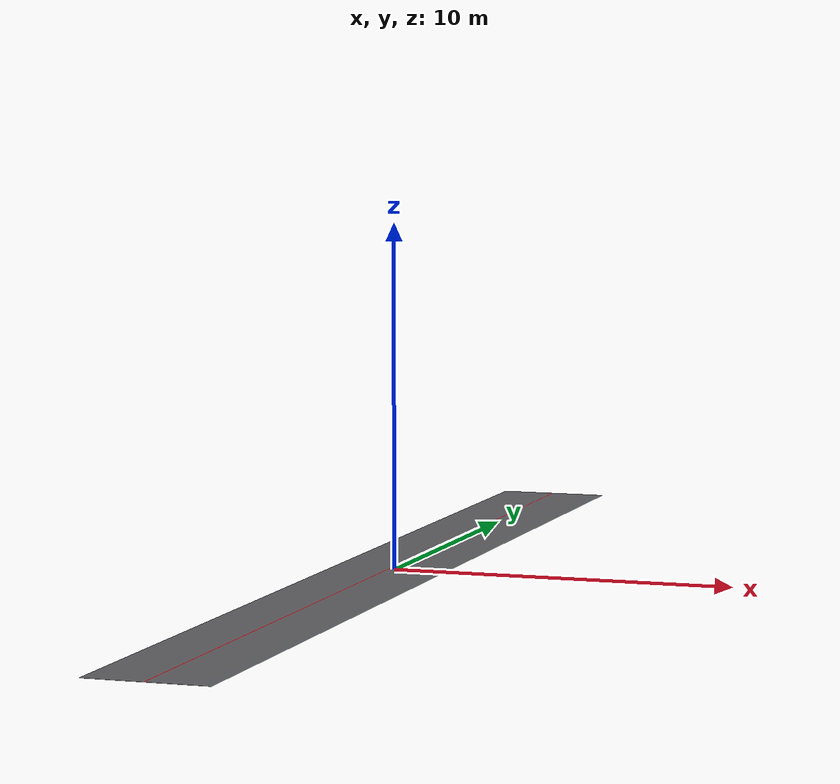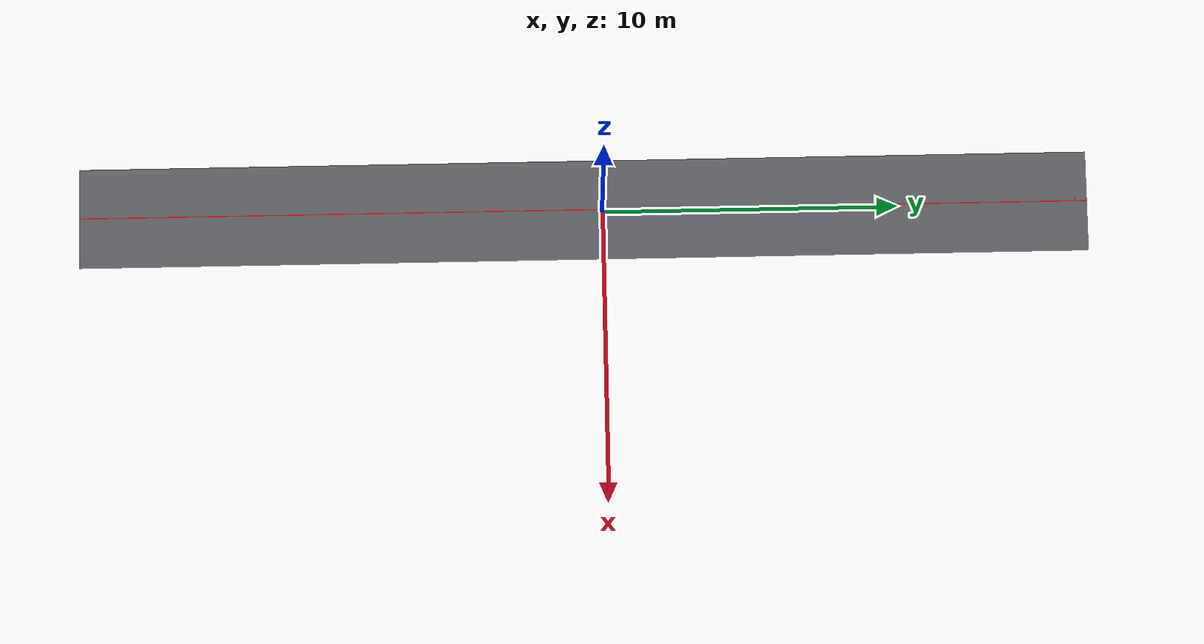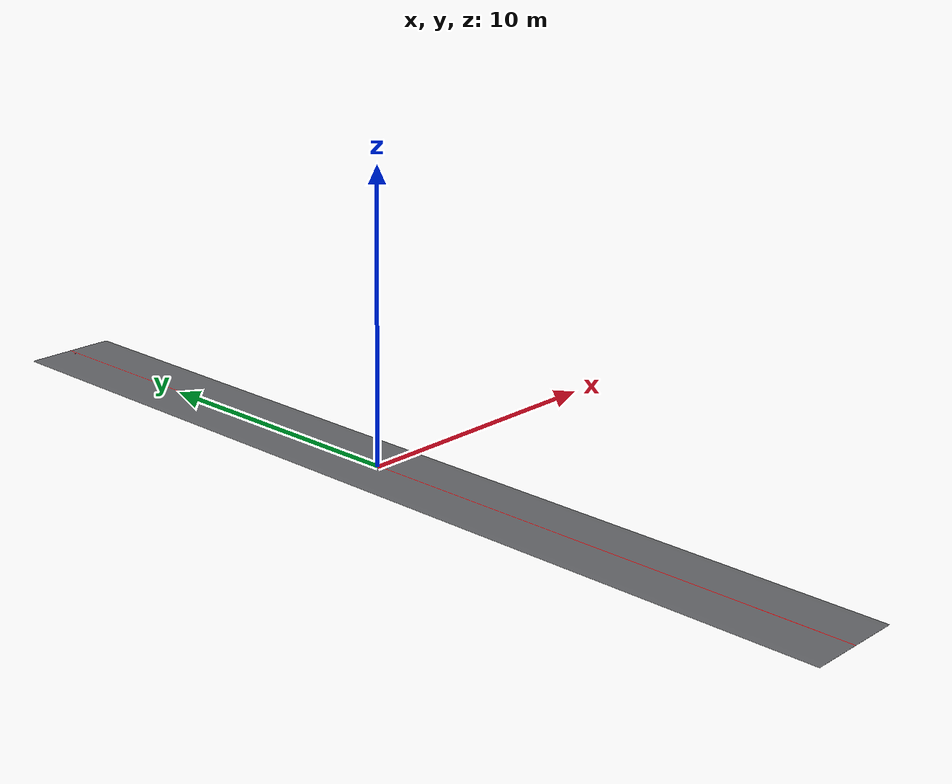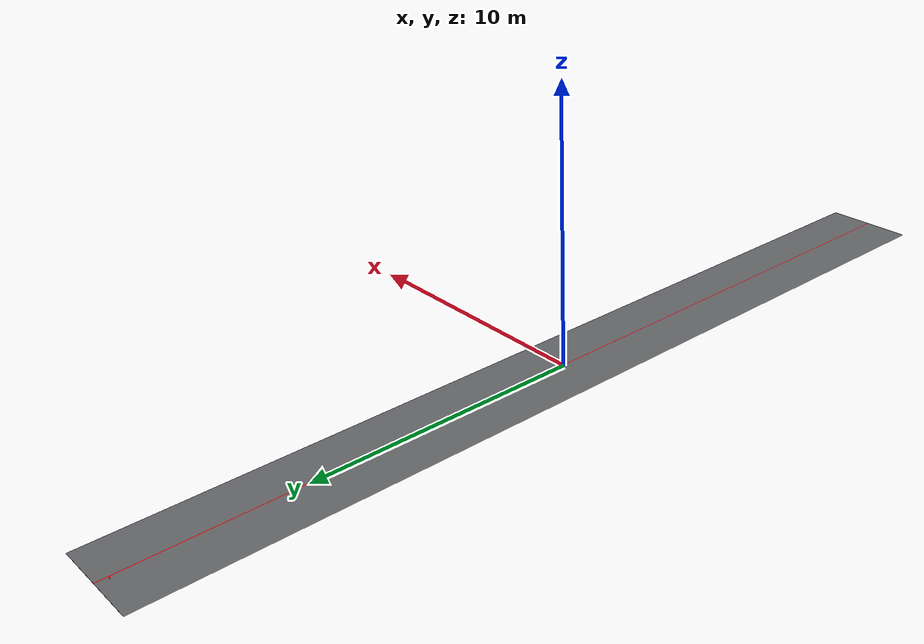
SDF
<?xml version="1.0" ?>
<sdf version="1.8">
  <model name="main">
    <static>true</static>

    <link name="testlink">
      <visual name="Cube">
        <geometry>
          <mesh>
            <uri>meshes/line_follower_track.dae</uri>
          </mesh>
        </geometry>
      </visual>

      <collision name="collision">
        <geometry>
          <mesh>
            <uri>meshes/line_follower_track.dae</uri>
          </mesh>
        </geometry>
      </collision>
    </link>
  </model>
</sdf>
